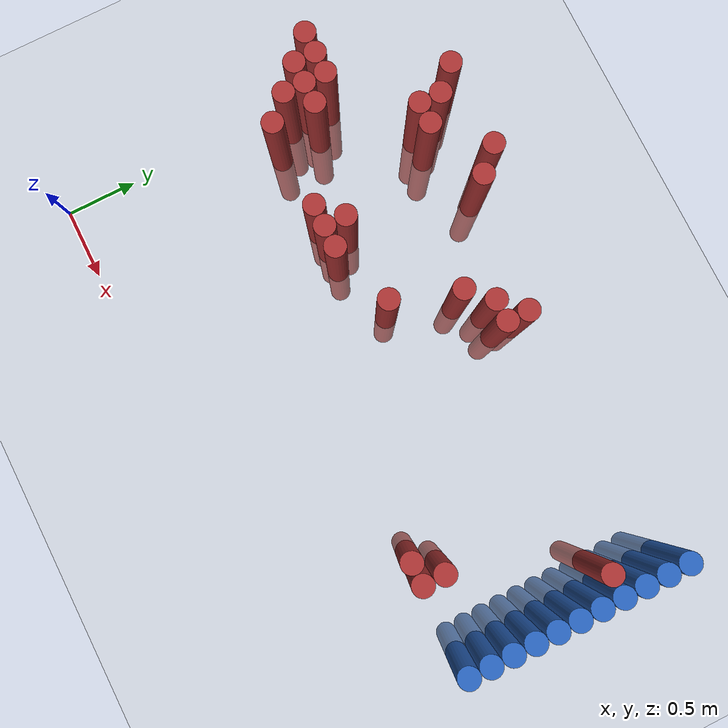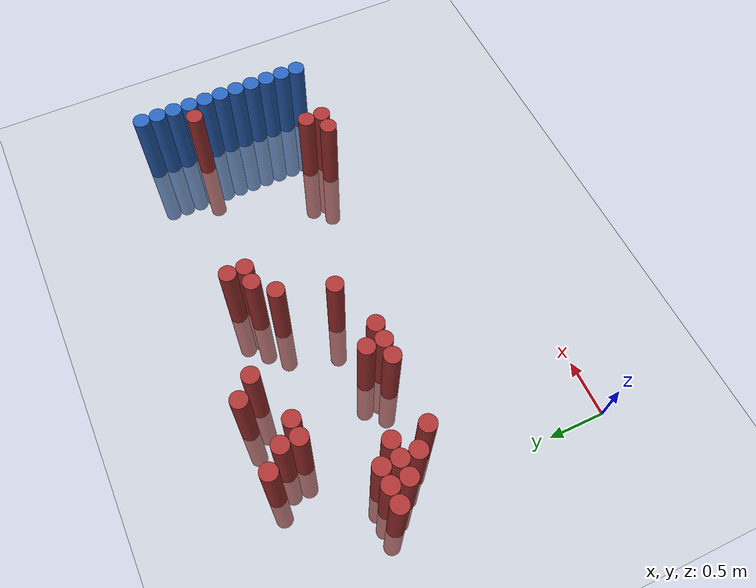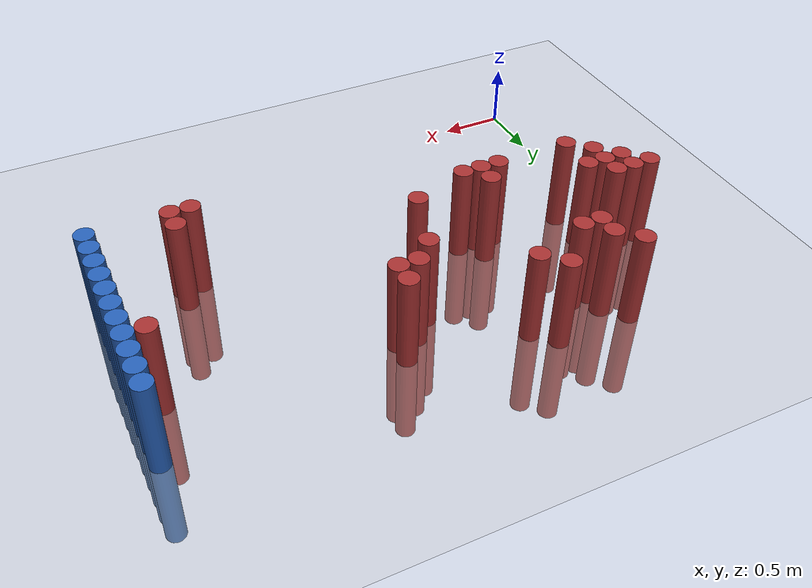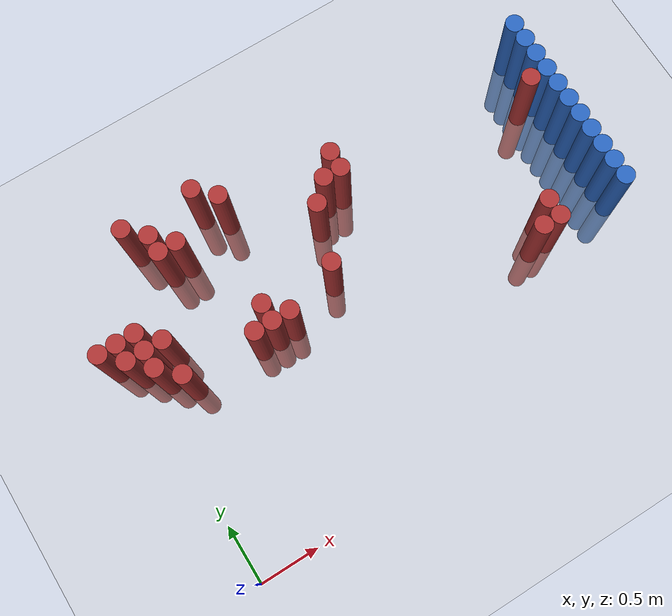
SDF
<sdf version="1.6">
 <world name="default">
  <model name="ground_plane">
   <static>1</static>
   <link name="link">
    <collision name="collision">
     <geometry><plane><normal>0 0 1</normal><size>100 100</size></plane></geometry>
     <surface><friction><ode><mu>100</mu><mu2>50</mu2></ode></friction></surface>
    </collision>
    <visual name="visual">
     <cast_shadows>0</cast_shadows>
     <geometry><plane><normal>0 0 1</normal><size>100 100</size></plane></geometry>
     <material>
      <script><uri>file://media/materials/scripts/gazebo.material</uri><name>Gazebo/Grey</name></script>
     </material>
    </visual>
   </link>
  </model>
  <model name="unit_cylinder_128">
   <static>1</static>
   <pose>3.925000 1.075000 0.000000 0.000000 0.000000 0.000000</pose>
   <link name="link">
    <inertial>
     <mass>1</mass>
     <inertia><ixx>0.145833</ixx><ixy>0</ixy><ixz>0</ixz><iyy>0.145833</iyy><iyz>0</iyz><izz>0.125</izz></inertia>
    </inertial>
    <collision name="collision">
     <geometry><cylinder><radius>0.075000</radius><length>1.5</length></cylinder></geometry>
    </collision>
    <visual name="visual">
     <geometry><cylinder><radius>0.075000</radius><length>1.5</length></cylinder></geometry>
     <material>
      <ambient>0.152000 0.379000 0.720000 1</ambient>
      <diffuse>0.152000 0.379000 0.720000 1</diffuse>
     </material>
     <material>
      <script><name>Gazebo/Grey</name><uri>file://media/materials/scripts/gazebo.material</uri></script>
     </material>
    </visual>
   </link>
  </model>
  <model name="unit_cylinder_130">
   <static>1</static>
   <pose>3.925000 1.225000 0.000000 0.000000 0.000000 0.000000</pose>
   <link name="link">
    <inertial>
     <mass>1</mass>
     <inertia><ixx>0.145833</ixx><ixy>0</ixy><ixz>0</ixz><iyy>0.145833</iyy><iyz>0</iyz><izz>0.125</izz></inertia>
    </inertial>
    <collision name="collision">
     <geometry><cylinder><radius>0.075000</radius><length>1.5</length></cylinder></geometry>
    </collision>
    <visual name="visual">
     <geometry><cylinder><radius>0.075000</radius><length>1.5</length></cylinder></geometry>
     <material>
      <ambient>0.152000 0.379000 0.720000 1</ambient>
      <diffuse>0.152000 0.379000 0.720000 1</diffuse>
     </material>
     <material>
      <script><name>Gazebo/Grey</name><uri>file://media/materials/scripts/gazebo.material</uri></script>
     </material>
    </visual>
   </link>
  </model>
  <model name="unit_cylinder_132">
   <static>1</static>
   <pose>3.925000 1.375000 0.000000 0.000000 0.000000 0.000000</pose>
   <link name="link">
    <inertial>
     <mass>1</mass>
     <inertia><ixx>0.145833</ixx><ixy>0</ixy><ixz>0</ixz><iyy>0.145833</iyy><iyz>0</iyz><izz>0.125</izz></inertia>
    </inertial>
    <collision name="collision">
     <geometry><cylinder><radius>0.075000</radius><length>1.5</length></cylinder></geometry>
    </collision>
    <visual name="visual">
     <geometry><cylinder><radius>0.075000</radius><length>1.5</length></cylinder></geometry>
     <material>
      <ambient>0.152000 0.379000 0.720000 1</ambient>
      <diffuse>0.152000 0.379000 0.720000 1</diffuse>
     </material>
     <material>
      <script><name>Gazebo/Grey</name><uri>file://media/materials/scripts/gazebo.material</uri></script>
     </material>
    </visual>
   </link>
  </model>
  <model name="unit_cylinder_134">
   <static>1</static>
   <pose>3.925000 1.525000 0.000000 0.000000 0.000000 0.000000</pose>
   <link name="link">
    <inertial>
     <mass>1</mass>
     <inertia><ixx>0.145833</ixx><ixy>0</ixy><ixz>0</ixz><iyy>0.145833</iyy><iyz>0</iyz><izz>0.125</izz></inertia>
    </inertial>
    <collision name="collision">
     <geometry><cylinder><radius>0.075000</radius><length>1.5</length></cylinder></geometry>
    </collision>
    <visual name="visual">
     <geometry><cylinder><radius>0.075000</radius><length>1.5</length></cylinder></geometry>
     <material>
      <ambient>0.152000 0.379000 0.720000 1</ambient>
      <diffuse>0.152000 0.379000 0.720000 1</diffuse>
     </material>
     <material>
      <script><name>Gazebo/Grey</name><uri>file://media/materials/scripts/gazebo.material</uri></script>
     </material>
    </visual>
   </link>
  </model>
  <model name="unit_cylinder_136">
   <static>1</static>
   <pose>3.925000 1.675000 0.000000 0.000000 0.000000 0.000000</pose>
   <link name="link">
    <inertial>
     <mass>1</mass>
     <inertia><ixx>0.145833</ixx><ixy>0</ixy><ixz>0</ixz><iyy>0.145833</iyy><iyz>0</iyz><izz>0.125</izz></inertia>
    </inertial>
    <collision name="collision">
     <geometry><cylinder><radius>0.075000</radius><length>1.5</length></cylinder></geometry>
    </collision>
    <visual name="visual">
     <geometry><cylinder><radius>0.075000</radius><length>1.5</length></cylinder></geometry>
     <material>
      <ambient>0.152000 0.379000 0.720000 1</ambient>
      <diffuse>0.152000 0.379000 0.720000 1</diffuse>
     </material>
     <material>
      <script><name>Gazebo/Grey</name><uri>file://media/materials/scripts/gazebo.material</uri></script>
     </material>
    </visual>
   </link>
  </model>
  <model name="unit_cylinder_138">
   <static>1</static>
   <pose>3.925000 1.825000 0.000000 0.000000 0.000000 0.000000</pose>
   <link name="link">
    <inertial>
     <mass>1</mass>
     <inertia><ixx>0.145833</ixx><ixy>0</ixy><ixz>0</ixz><iyy>0.145833</iyy><iyz>0</iyz><izz>0.125</izz></inertia>
    </inertial>
    <collision name="collision">
     <geometry><cylinder><radius>0.075000</radius><length>1.5</length></cylinder></geometry>
    </collision>
    <visual name="visual">
     <geometry><cylinder><radius>0.075000</radius><length>1.5</length></cylinder></geometry>
     <material>
      <ambient>0.152000 0.379000 0.720000 1</ambient>
      <diffuse>0.152000 0.379000 0.720000 1</diffuse>
     </material>
     <material>
      <script><name>Gazebo/Grey</name><uri>file://media/materials/scripts/gazebo.material</uri></script>
     </material>
    </visual>
   </link>
  </model>
  <model name="unit_cylinder_140">
   <static>1</static>
   <pose>3.925000 1.975000 0.000000 0.000000 0.000000 0.000000</pose>
   <link name="link">
    <inertial>
     <mass>1</mass>
     <inertia><ixx>0.145833</ixx><ixy>0</ixy><ixz>0</ixz><iyy>0.145833</iyy><iyz>0</iyz><izz>0.125</izz></inertia>
    </inertial>
    <collision name="collision">
     <geometry><cylinder><radius>0.075000</radius><length>1.5</length></cylinder></geometry>
    </collision>
    <visual name="visual">
     <geometry><cylinder><radius>0.075000</radius><length>1.5</length></cylinder></geometry>
     <material>
      <ambient>0.152000 0.379000 0.720000 1</ambient>
      <diffuse>0.152000 0.379000 0.720000 1</diffuse>
     </material>
     <material>
      <script><name>Gazebo/Grey</name><uri>file://media/materials/scripts/gazebo.material</uri></script>
     </material>
    </visual>
   </link>
  </model>
  <model name="unit_cylinder_142">
   <static>1</static>
   <pose>3.925000 2.125000 0.000000 0.000000 0.000000 0.000000</pose>
   <link name="link">
    <inertial>
     <mass>1</mass>
     <inertia><ixx>0.145833</ixx><ixy>0</ixy><ixz>0</ixz><iyy>0.145833</iyy><iyz>0</iyz><izz>0.125</izz></inertia>
    </inertial>
    <collision name="collision">
     <geometry><cylinder><radius>0.075000</radius><length>1.5</length></cylinder></geometry>
    </collision>
    <visual name="visual">
     <geometry><cylinder><radius>0.075000</radius><length>1.5</length></cylinder></geometry>
     <material>
      <ambient>0.152000 0.379000 0.720000 1</ambient>
      <diffuse>0.152000 0.379000 0.720000 1</diffuse>
     </material>
     <material>
      <script><name>Gazebo/Grey</name><uri>file://media/materials/scripts/gazebo.material</uri></script>
     </material>
    </visual>
   </link>
  </model>
  <model name="unit_cylinder_144">
   <static>1</static>
   <pose>3.925000 2.275000 0.000000 0.000000 0.000000 0.000000</pose>
   <link name="link">
    <inertial>
     <mass>1</mass>
     <inertia><ixx>0.145833</ixx><ixy>0</ixy><ixz>0</ixz><iyy>0.145833</iyy><iyz>0</iyz><izz>0.125</izz></inertia>
    </inertial>
    <collision name="collision">
     <geometry><cylinder><radius>0.075000</radius><length>1.5</length></cylinder></geometry>
    </collision>
    <visual name="visual">
     <geometry><cylinder><radius>0.075000</radius><length>1.5</length></cylinder></geometry>
     <material>
      <ambient>0.152000 0.379000 0.720000 1</ambient>
      <diffuse>0.152000 0.379000 0.720000 1</diffuse>
     </material>
     <material>
      <script><name>Gazebo/Grey</name><uri>file://media/materials/scripts/gazebo.material</uri></script>
     </material>
    </visual>
   </link>
  </model>
  <model name="unit_cylinder_146">
   <static>1</static>
   <pose>3.925000 2.425000 0.000000 0.000000 0.000000 0.000000</pose>
   <link name="link">
    <inertial>
     <mass>1</mass>
     <inertia><ixx>0.145833</ixx><ixy>0</ixy><ixz>0</ixz><iyy>0.145833</iyy><iyz>0</iyz><izz>0.125</izz></inertia>
    </inertial>
    <collision name="collision">
     <geometry><cylinder><radius>0.075000</radius><length>1.5</length></cylinder></geometry>
    </collision>
    <visual name="visual">
     <geometry><cylinder><radius>0.075000</radius><length>1.5</length></cylinder></geometry>
     <material>
      <ambient>0.152000 0.379000 0.720000 1</ambient>
      <diffuse>0.152000 0.379000 0.720000 1</diffuse>
     </material>
     <material>
      <script><name>Gazebo/Grey</name><uri>file://media/materials/scripts/gazebo.material</uri></script>
     </material>
    </visual>
   </link>
  </model>
  <model name="unit_cylinder_148">
   <static>1</static>
   <pose>3.925000 2.575000 0.000000 0.000000 0.000000 0.000000</pose>
   <link name="link">
    <inertial>
     <mass>1</mass>
     <inertia><ixx>0.145833</ixx><ixy>0</ixy><ixz>0</ixz><iyy>0.145833</iyy><iyz>0</iyz><izz>0.125</izz></inertia>
    </inertial>
    <collision name="collision">
     <geometry><cylinder><radius>0.075000</radius><length>1.5</length></cylinder></geometry>
    </collision>
    <visual name="visual">
     <geometry><cylinder><radius>0.075000</radius><length>1.5</length></cylinder></geometry>
     <material>
      <ambient>0.152000 0.379000 0.720000 1</ambient>
      <diffuse>0.152000 0.379000 0.720000 1</diffuse>
     </material>
     <material>
      <script><name>Gazebo/Grey</name><uri>file://media/materials/scripts/gazebo.material</uri></script>
     </material>
    </visual>
   </link>
  </model>
  <model name="unit_cylinder_350">
   <static>1</static>
   <pose>-0.125000 1.975000 0.000000 0.000000 0.000000 0.000000</pose>
   <link name="link">
    <inertial>
     <mass>1</mass>
     <inertia><ixx>0.145833</ixx><ixy>0</ixy><ixz>0</ixz><iyy>0.145833</iyy><iyz>0</iyz><izz>0.125</izz></inertia>
    </inertial>
    <collision name="collision">
     <geometry><cylinder><radius>0.075000</radius><length>1.5</length></cylinder></geometry>
    </collision>
    <visual name="visual">
     <geometry><cylinder><radius>0.075000</radius><length>1.5</length></cylinder></geometry>
     <material>
      <ambient>0.648000 0.192000 0.192000 1</ambient>
      <diffuse>0.648000 0.192000 0.192000 1</diffuse>
     </material>
     <material>
      <script><name>Gazebo/Grey</name><uri>file://media/materials/scripts/gazebo.material</uri></script>
     </material>
    </visual>
   </link>
  </model>
  <model name="unit_cylinder_352">
   <static>1</static>
   <pose>0.025000 1.825000 0.000000 0.000000 0.000000 0.000000</pose>
   <link name="link">
    <inertial>
     <mass>1</mass>
     <inertia><ixx>0.145833</ixx><ixy>0</ixy><ixz>0</ixz><iyy>0.145833</iyy><iyz>0</iyz><izz>0.125</izz></inertia>
    </inertial>
    <collision name="collision">
     <geometry><cylinder><radius>0.075000</radius><length>1.5</length></cylinder></geometry>
    </collision>
    <visual name="visual">
     <geometry><cylinder><radius>0.075000</radius><length>1.5</length></cylinder></geometry>
     <material>
      <ambient>0.648000 0.192000 0.192000 1</ambient>
      <diffuse>0.648000 0.192000 0.192000 1</diffuse>
     </material>
     <material>
      <script><name>Gazebo/Grey</name><uri>file://media/materials/scripts/gazebo.material</uri></script>
     </material>
    </visual>
   </link>
  </model>
  <model name="unit_cylinder_353">
   <static>1</static>
   <pose>0.025000 1.975000 0.000000 0.000000 0.000000 0.000000</pose>
   <link name="link">
    <inertial>
     <mass>1</mass>
     <inertia><ixx>0.145833</ixx><ixy>0</ixy><ixz>0</ixz><iyy>0.145833</iyy><iyz>0</iyz><izz>0.125</izz></inertia>
    </inertial>
    <collision name="collision">
     <geometry><cylinder><radius>0.075000</radius><length>1.5</length></cylinder></geometry>
    </collision>
    <visual name="visual">
     <geometry><cylinder><radius>0.075000</radius><length>1.5</length></cylinder></geometry>
     <material>
      <ambient>0.648000 0.192000 0.192000 1</ambient>
      <diffuse>0.648000 0.192000 0.192000 1</diffuse>
     </material>
     <material>
      <script><name>Gazebo/Grey</name><uri>file://media/materials/scripts/gazebo.material</uri></script>
     </material>
    </visual>
   </link>
  </model>
  <model name="unit_cylinder_357">
   <static>1</static>
   <pose>0.175000 1.675000 0.000000 0.000000 0.000000 0.000000</pose>
   <link name="link">
    <inertial>
     <mass>1</mass>
     <inertia><ixx>0.145833</ixx><ixy>0</ixy><ixz>0</ixz><iyy>0.145833</iyy><iyz>0</iyz><izz>0.125</izz></inertia>
    </inertial>
    <collision name="collision">
     <geometry><cylinder><radius>0.075000</radius><length>1.5</length></cylinder></geometry>
    </collision>
    <visual name="visual">
     <geometry><cylinder><radius>0.075000</radius><length>1.5</length></cylinder></geometry>
     <material>
      <ambient>0.648000 0.192000 0.192000 1</ambient>
      <diffuse>0.648000 0.192000 0.192000 1</diffuse>
     </material>
     <material>
      <script><name>Gazebo/Grey</name><uri>file://media/materials/scripts/gazebo.material</uri></script>
     </material>
    </visual>
   </link>
  </model>
  <model name="unit_cylinder_358">
   <static>1</static>
   <pose>0.175000 1.825000 0.000000 0.000000 0.000000 0.000000</pose>
   <link name="link">
    <inertial>
     <mass>1</mass>
     <inertia><ixx>0.145833</ixx><ixy>0</ixy><ixz>0</ixz><iyy>0.145833</iyy><iyz>0</iyz><izz>0.125</izz></inertia>
    </inertial>
    <collision name="collision">
     <geometry><cylinder><radius>0.075000</radius><length>1.5</length></cylinder></geometry>
    </collision>
    <visual name="visual">
     <geometry><cylinder><radius>0.075000</radius><length>1.5</length></cylinder></geometry>
     <material>
      <ambient>0.648000 0.192000 0.192000 1</ambient>
      <diffuse>0.648000 0.192000 0.192000 1</diffuse>
     </material>
     <material>
      <script><name>Gazebo/Grey</name><uri>file://media/materials/scripts/gazebo.material</uri></script>
     </material>
    </visual>
   </link>
  </model>
  <model name="unit_cylinder_359">
   <static>1</static>
   <pose>0.175000 1.975000 0.000000 0.000000 0.000000 0.000000</pose>
   <link name="link">
    <inertial>
     <mass>1</mass>
     <inertia><ixx>0.145833</ixx><ixy>0</ixy><ixz>0</ixz><iyy>0.145833</iyy><iyz>0</iyz><izz>0.125</izz></inertia>
    </inertial>
    <collision name="collision">
     <geometry><cylinder><radius>0.075000</radius><length>1.5</length></cylinder></geometry>
    </collision>
    <visual name="visual">
     <geometry><cylinder><radius>0.075000</radius><length>1.5</length></cylinder></geometry>
     <material>
      <ambient>0.648000 0.192000 0.192000 1</ambient>
      <diffuse>0.648000 0.192000 0.192000 1</diffuse>
     </material>
     <material>
      <script><name>Gazebo/Grey</name><uri>file://media/materials/scripts/gazebo.material</uri></script>
     </material>
    </visual>
   </link>
  </model>
  <model name="unit_cylinder_365">
   <static>1</static>
   <pose>0.325000 1.525000 0.000000 0.000000 0.000000 0.000000</pose>
   <link name="link">
    <inertial>
     <mass>1</mass>
     <inertia><ixx>0.145833</ixx><ixy>0</ixy><ixz>0</ixz><iyy>0.145833</iyy><iyz>0</iyz><izz>0.125</izz></inertia>
    </inertial>
    <collision name="collision">
     <geometry><cylinder><radius>0.075000</radius><length>1.5</length></cylinder></geometry>
    </collision>
    <visual name="visual">
     <geometry><cylinder><radius>0.075000</radius><length>1.5</length></cylinder></geometry>
     <material>
      <ambient>0.648000 0.192000 0.192000 1</ambient>
      <diffuse>0.648000 0.192000 0.192000 1</diffuse>
     </material>
     <material>
      <script><name>Gazebo/Grey</name><uri>file://media/materials/scripts/gazebo.material</uri></script>
     </material>
    </visual>
   </link>
  </model>
  <model name="unit_cylinder_366">
   <static>1</static>
   <pose>0.325000 1.825000 0.000000 0.000000 0.000000 0.000000</pose>
   <link name="link">
    <inertial>
     <mass>1</mass>
     <inertia><ixx>0.145833</ixx><ixy>0</ixy><ixz>0</ixz><iyy>0.145833</iyy><iyz>0</iyz><izz>0.125</izz></inertia>
    </inertial>
    <collision name="collision">
     <geometry><cylinder><radius>0.075000</radius><length>1.5</length></cylinder></geometry>
    </collision>
    <visual name="visual">
     <geometry><cylinder><radius>0.075000</radius><length>1.5</length></cylinder></geometry>
     <material>
      <ambient>0.648000 0.192000 0.192000 1</ambient>
      <diffuse>0.648000 0.192000 0.192000 1</diffuse>
     </material>
     <material>
      <script><name>Gazebo/Grey</name><uri>file://media/materials/scripts/gazebo.material</uri></script>
     </material>
    </visual>
   </link>
  </model>
  <model name="unit_cylinder_372">
   <static>1</static>
   <pose>0.475000 2.725000 0.000000 0.000000 0.000000 0.000000</pose>
   <link name="link">
    <inertial>
     <mass>1</mass>
     <inertia><ixx>0.145833</ixx><ixy>0</ixy><ixz>0</ixz><iyy>0.145833</iyy><iyz>0</iyz><izz>0.125</izz></inertia>
    </inertial>
    <collision name="collision">
     <geometry><cylinder><radius>0.075000</radius><length>1.5</length></cylinder></geometry>
    </collision>
    <visual name="visual">
     <geometry><cylinder><radius>0.075000</radius><length>1.5</length></cylinder></geometry>
     <material>
      <ambient>0.648000 0.192000 0.192000 1</ambient>
      <diffuse>0.648000 0.192000 0.192000 1</diffuse>
     </material>
     <material>
      <script><name>Gazebo/Grey</name><uri>file://media/materials/scripts/gazebo.material</uri></script>
     </material>
    </visual>
   </link>
  </model>
  <model name="unit_cylinder_377">
   <static>1</static>
   <pose>0.625000 2.425000 0.000000 0.000000 0.000000 0.000000</pose>
   <link name="link">
    <inertial>
     <mass>1</mass>
     <inertia><ixx>0.145833</ixx><ixy>0</ixy><ixz>0</ixz><iyy>0.145833</iyy><iyz>0</iyz><izz>0.125</izz></inertia>
    </inertial>
    <collision name="collision">
     <geometry><cylinder><radius>0.075000</radius><length>1.5</length></cylinder></geometry>
    </collision>
    <visual name="visual">
     <geometry><cylinder><radius>0.075000</radius><length>1.5</length></cylinder></geometry>
     <material>
      <ambient>0.648000 0.192000 0.192000 1</ambient>
      <diffuse>0.648000 0.192000 0.192000 1</diffuse>
     </material>
     <material>
      <script><name>Gazebo/Grey</name><uri>file://media/materials/scripts/gazebo.material</uri></script>
     </material>
    </visual>
   </link>
  </model>
  <model name="unit_cylinder_378">
   <static>1</static>
   <pose>0.625000 2.575000 0.000000 0.000000 0.000000 0.000000</pose>
   <link name="link">
    <inertial>
     <mass>1</mass>
     <inertia><ixx>0.145833</ixx><ixy>0</ixy><ixz>0</ixz><iyy>0.145833</iyy><iyz>0</iyz><izz>0.125</izz></inertia>
    </inertial>
    <collision name="collision">
     <geometry><cylinder><radius>0.075000</radius><length>1.5</length></cylinder></geometry>
    </collision>
    <visual name="visual">
     <geometry><cylinder><radius>0.075000</radius><length>1.5</length></cylinder></geometry>
     <material>
      <ambient>0.648000 0.192000 0.192000 1</ambient>
      <diffuse>0.648000 0.192000 0.192000 1</diffuse>
     </material>
     <material>
      <script><name>Gazebo/Grey</name><uri>file://media/materials/scripts/gazebo.material</uri></script>
     </material>
    </visual>
   </link>
  </model>
  <model name="unit_cylinder_384">
   <static>1</static>
   <pose>0.775000 2.425000 0.000000 0.000000 0.000000 0.000000</pose>
   <link name="link">
    <inertial>
     <mass>1</mass>
     <inertia><ixx>0.145833</ixx><ixy>0</ixy><ixz>0</ixz><iyy>0.145833</iyy><iyz>0</iyz><izz>0.125</izz></inertia>
    </inertial>
    <collision name="collision">
     <geometry><cylinder><radius>0.075000</radius><length>1.5</length></cylinder></geometry>
    </collision>
    <visual name="visual">
     <geometry><cylinder><radius>0.075000</radius><length>1.5</length></cylinder></geometry>
     <material>
      <ambient>0.648000 0.192000 0.192000 1</ambient>
      <diffuse>0.648000 0.192000 0.192000 1</diffuse>
     </material>
     <material>
      <script><name>Gazebo/Grey</name><uri>file://media/materials/scripts/gazebo.material</uri></script>
     </material>
    </visual>
   </link>
  </model>
  <model name="unit_cylinder_390">
   <static>1</static>
   <pose>0.925000 1.525000 0.000000 0.000000 0.000000 0.000000</pose>
   <link name="link">
    <inertial>
     <mass>1</mass>
     <inertia><ixx>0.145833</ixx><ixy>0</ixy><ixz>0</ixz><iyy>0.145833</iyy><iyz>0</iyz><izz>0.125</izz></inertia>
    </inertial>
    <collision name="collision">
     <geometry><cylinder><radius>0.075000</radius><length>1.5</length></cylinder></geometry>
    </collision>
    <visual name="visual">
     <geometry><cylinder><radius>0.075000</radius><length>1.5</length></cylinder></geometry>
     <material>
      <ambient>0.648000 0.192000 0.192000 1</ambient>
      <diffuse>0.648000 0.192000 0.192000 1</diffuse>
     </material>
     <material>
      <script><name>Gazebo/Grey</name><uri>file://media/materials/scripts/gazebo.material</uri></script>
     </material>
    </visual>
   </link>
  </model>
  <model name="unit_cylinder_393">
   <static>1</static>
   <pose>1.075000 1.525000 0.000000 0.000000 0.000000 0.000000</pose>
   <link name="link">
    <inertial>
     <mass>1</mass>
     <inertia><ixx>0.145833</ixx><ixy>0</ixy><ixz>0</ixz><iyy>0.145833</iyy><iyz>0</iyz><izz>0.125</izz></inertia>
    </inertial>
    <collision name="collision">
     <geometry><cylinder><radius>0.075000</radius><length>1.5</length></cylinder></geometry>
    </collision>
    <visual name="visual">
     <geometry><cylinder><radius>0.075000</radius><length>1.5</length></cylinder></geometry>
     <material>
      <ambient>0.648000 0.192000 0.192000 1</ambient>
      <diffuse>0.648000 0.192000 0.192000 1</diffuse>
     </material>
     <material>
      <script><name>Gazebo/Grey</name><uri>file://media/materials/scripts/gazebo.material</uri></script>
     </material>
    </visual>
   </link>
  </model>
  <model name="unit_cylinder_394">
   <static>1</static>
   <pose>1.075000 1.675000 0.000000 0.000000 0.000000 0.000000</pose>
   <link name="link">
    <inertial>
     <mass>1</mass>
     <inertia><ixx>0.145833</ixx><ixy>0</ixy><ixz>0</ixz><iyy>0.145833</iyy><iyz>0</iyz><izz>0.125</izz></inertia>
    </inertial>
    <collision name="collision">
     <geometry><cylinder><radius>0.075000</radius><length>1.5</length></cylinder></geometry>
    </collision>
    <visual name="visual">
     <geometry><cylinder><radius>0.075000</radius><length>1.5</length></cylinder></geometry>
     <material>
      <ambient>0.648000 0.192000 0.192000 1</ambient>
      <diffuse>0.648000 0.192000 0.192000 1</diffuse>
     </material>
     <material>
      <script><name>Gazebo/Grey</name><uri>file://media/materials/scripts/gazebo.material</uri></script>
     </material>
    </visual>
   </link>
  </model>
  <model name="unit_cylinder_395">
   <static>1</static>
   <pose>1.075000 2.725000 0.000000 0.000000 0.000000 0.000000</pose>
   <link name="link">
    <inertial>
     <mass>1</mass>
     <inertia><ixx>0.145833</ixx><ixy>0</ixy><ixz>0</ixz><iyy>0.145833</iyy><iyz>0</iyz><izz>0.125</izz></inertia>
    </inertial>
    <collision name="collision">
     <geometry><cylinder><radius>0.075000</radius><length>1.5</length></cylinder></geometry>
    </collision>
    <visual name="visual">
     <geometry><cylinder><radius>0.075000</radius><length>1.5</length></cylinder></geometry>
     <material>
      <ambient>0.648000 0.192000 0.192000 1</ambient>
      <diffuse>0.648000 0.192000 0.192000 1</diffuse>
     </material>
     <material>
      <script><name>Gazebo/Grey</name><uri>file://media/materials/scripts/gazebo.material</uri></script>
     </material>
    </visual>
   </link>
  </model>
  <model name="unit_cylinder_397">
   <static>1</static>
   <pose>1.225000 1.525000 0.000000 0.000000 0.000000 0.000000</pose>
   <link name="link">
    <inertial>
     <mass>1</mass>
     <inertia><ixx>0.145833</ixx><ixy>0</ixy><ixz>0</ixz><iyy>0.145833</iyy><iyz>0</iyz><izz>0.125</izz></inertia>
    </inertial>
    <collision name="collision">
     <geometry><cylinder><radius>0.075000</radius><length>1.5</length></cylinder></geometry>
    </collision>
    <visual name="visual">
     <geometry><cylinder><radius>0.075000</radius><length>1.5</length></cylinder></geometry>
     <material>
      <ambient>0.648000 0.192000 0.192000 1</ambient>
      <diffuse>0.648000 0.192000 0.192000 1</diffuse>
     </material>
     <material>
      <script><name>Gazebo/Grey</name><uri>file://media/materials/scripts/gazebo.material</uri></script>
     </material>
    </visual>
   </link>
  </model>
  <model name="unit_cylinder_398">
   <static>1</static>
   <pose>1.225000 2.575000 0.000000 0.000000 0.000000 0.000000</pose>
   <link name="link">
    <inertial>
     <mass>1</mass>
     <inertia><ixx>0.145833</ixx><ixy>0</ixy><ixz>0</ixz><iyy>0.145833</iyy><iyz>0</iyz><izz>0.125</izz></inertia>
    </inertial>
    <collision name="collision">
     <geometry><cylinder><radius>0.075000</radius><length>1.5</length></cylinder></geometry>
    </collision>
    <visual name="visual">
     <geometry><cylinder><radius>0.075000</radius><length>1.5</length></cylinder></geometry>
     <material>
      <ambient>0.648000 0.192000 0.192000 1</ambient>
      <diffuse>0.648000 0.192000 0.192000 1</diffuse>
     </material>
     <material>
      <script><name>Gazebo/Grey</name><uri>file://media/materials/scripts/gazebo.material</uri></script>
     </material>
    </visual>
   </link>
  </model>
  <model name="unit_cylinder_406">
   <static>1</static>
   <pose>1.675000 1.675000 0.000000 0.000000 0.000000 0.000000</pose>
   <link name="link">
    <inertial>
     <mass>1</mass>
     <inertia><ixx>0.145833</ixx><ixy>0</ixy><ixz>0</ixz><iyy>0.145833</iyy><iyz>0</iyz><izz>0.125</izz></inertia>
    </inertial>
    <collision name="collision">
     <geometry><cylinder><radius>0.075000</radius><length>1.5</length></cylinder></geometry>
    </collision>
    <visual name="visual">
     <geometry><cylinder><radius>0.075000</radius><length>1.5</length></cylinder></geometry>
     <material>
      <ambient>0.648000 0.192000 0.192000 1</ambient>
      <diffuse>0.648000 0.192000 0.192000 1</diffuse>
     </material>
     <material>
      <script><name>Gazebo/Grey</name><uri>file://media/materials/scripts/gazebo.material</uri></script>
     </material>
    </visual>
   </link>
  </model>
  <model name="unit_cylinder_407">
   <static>1</static>
   <pose>1.825000 2.125000 0.000000 0.000000 0.000000 0.000000</pose>
   <link name="link">
    <inertial>
     <mass>1</mass>
     <inertia><ixx>0.145833</ixx><ixy>0</ixy><ixz>0</ixz><iyy>0.145833</iyy><iyz>0</iyz><izz>0.125</izz></inertia>
    </inertial>
    <collision name="collision">
     <geometry><cylinder><radius>0.075000</radius><length>1.5</length></cylinder></geometry>
    </collision>
    <visual name="visual">
     <geometry><cylinder><radius>0.075000</radius><length>1.5</length></cylinder></geometry>
     <material>
      <ambient>0.648000 0.192000 0.192000 1</ambient>
      <diffuse>0.648000 0.192000 0.192000 1</diffuse>
     </material>
     <material>
      <script><name>Gazebo/Grey</name><uri>file://media/materials/scripts/gazebo.material</uri></script>
     </material>
    </visual>
   </link>
  </model>
  <model name="unit_cylinder_408">
   <static>1</static>
   <pose>1.975000 2.275000 0.000000 0.000000 0.000000 0.000000</pose>
   <link name="link">
    <inertial>
     <mass>1</mass>
     <inertia><ixx>0.145833</ixx><ixy>0</ixy><ixz>0</ixz><iyy>0.145833</iyy><iyz>0</iyz><izz>0.125</izz></inertia>
    </inertial>
    <collision name="collision">
     <geometry><cylinder><radius>0.075000</radius><length>1.5</length></cylinder></geometry>
    </collision>
    <visual name="visual">
     <geometry><cylinder><radius>0.075000</radius><length>1.5</length></cylinder></geometry>
     <material>
      <ambient>0.648000 0.192000 0.192000 1</ambient>
      <diffuse>0.648000 0.192000 0.192000 1</diffuse>
     </material>
     <material>
      <script><name>Gazebo/Grey</name><uri>file://media/materials/scripts/gazebo.material</uri></script>
     </material>
    </visual>
   </link>
  </model>
  <model name="unit_cylinder_410">
   <static>1</static>
   <pose>2.125000 2.275000 0.000000 0.000000 0.000000 0.000000</pose>
   <link name="link">
    <inertial>
     <mass>1</mass>
     <inertia><ixx>0.145833</ixx><ixy>0</ixy><ixz>0</ixz><iyy>0.145833</iyy><iyz>0</iyz><izz>0.125</izz></inertia>
    </inertial>
    <collision name="collision">
     <geometry><cylinder><radius>0.075000</radius><length>1.5</length></cylinder></geometry>
    </collision>
    <visual name="visual">
     <geometry><cylinder><radius>0.075000</radius><length>1.5</length></cylinder></geometry>
     <material>
      <ambient>0.648000 0.192000 0.192000 1</ambient>
      <diffuse>0.648000 0.192000 0.192000 1</diffuse>
     </material>
     <material>
      <script><name>Gazebo/Grey</name><uri>file://media/materials/scripts/gazebo.material</uri></script>
     </material>
    </visual>
   </link>
  </model>
  <model name="unit_cylinder_411">
   <static>1</static>
   <pose>2.125000 2.425000 0.000000 0.000000 0.000000 0.000000</pose>
   <link name="link">
    <inertial>
     <mass>1</mass>
     <inertia><ixx>0.145833</ixx><ixy>0</ixy><ixz>0</ixz><iyy>0.145833</iyy><iyz>0</iyz><izz>0.125</izz></inertia>
    </inertial>
    <collision name="collision">
     <geometry><cylinder><radius>0.075000</radius><length>1.5</length></cylinder></geometry>
    </collision>
    <visual name="visual">
     <geometry><cylinder><radius>0.075000</radius><length>1.5</length></cylinder></geometry>
     <material>
      <ambient>0.648000 0.192000 0.192000 1</ambient>
      <diffuse>0.648000 0.192000 0.192000 1</diffuse>
     </material>
     <material>
      <script><name>Gazebo/Grey</name><uri>file://media/materials/scripts/gazebo.material</uri></script>
     </material>
    </visual>
   </link>
  </model>
  <model name="unit_cylinder_426">
   <static>1</static>
   <pose>3.175000 1.075000 0.000000 0.000000 0.000000 0.000000</pose>
   <link name="link">
    <inertial>
     <mass>1</mass>
     <inertia><ixx>0.145833</ixx><ixy>0</ixy><ixz>0</ixz><iyy>0.145833</iyy><iyz>0</iyz><izz>0.125</izz></inertia>
    </inertial>
    <collision name="collision">
     <geometry><cylinder><radius>0.075000</radius><length>1.5</length></cylinder></geometry>
    </collision>
    <visual name="visual">
     <geometry><cylinder><radius>0.075000</radius><length>1.5</length></cylinder></geometry>
     <material>
      <ambient>0.648000 0.192000 0.192000 1</ambient>
      <diffuse>0.648000 0.192000 0.192000 1</diffuse>
     </material>
     <material>
      <script><name>Gazebo/Grey</name><uri>file://media/materials/scripts/gazebo.material</uri></script>
     </material>
    </visual>
   </link>
  </model>
  <model name="unit_cylinder_430">
   <static>1</static>
   <pose>3.325000 1.075000 0.000000 0.000000 0.000000 0.000000</pose>
   <link name="link">
    <inertial>
     <mass>1</mass>
     <inertia><ixx>0.145833</ixx><ixy>0</ixy><ixz>0</ixz><iyy>0.145833</iyy><iyz>0</iyz><izz>0.125</izz></inertia>
    </inertial>
    <collision name="collision">
     <geometry><cylinder><radius>0.075000</radius><length>1.5</length></cylinder></geometry>
    </collision>
    <visual name="visual">
     <geometry><cylinder><radius>0.075000</radius><length>1.5</length></cylinder></geometry>
     <material>
      <ambient>0.648000 0.192000 0.192000 1</ambient>
      <diffuse>0.648000 0.192000 0.192000 1</diffuse>
     </material>
     <material>
      <script><name>Gazebo/Grey</name><uri>file://media/materials/scripts/gazebo.material</uri></script>
     </material>
    </visual>
   </link>
  </model>
  <model name="unit_cylinder_431">
   <static>1</static>
   <pose>3.325000 1.225000 0.000000 0.000000 0.000000 0.000000</pose>
   <link name="link">
    <inertial>
     <mass>1</mass>
     <inertia><ixx>0.145833</ixx><ixy>0</ixy><ixz>0</ixz><iyy>0.145833</iyy><iyz>0</iyz><izz>0.125</izz></inertia>
    </inertial>
    <collision name="collision">
     <geometry><cylinder><radius>0.075000</radius><length>1.5</length></cylinder></geometry>
    </collision>
    <visual name="visual">
     <geometry><cylinder><radius>0.075000</radius><length>1.5</length></cylinder></geometry>
     <material>
      <ambient>0.648000 0.192000 0.192000 1</ambient>
      <diffuse>0.648000 0.192000 0.192000 1</diffuse>
     </material>
     <material>
      <script><name>Gazebo/Grey</name><uri>file://media/materials/scripts/gazebo.material</uri></script>
     </material>
    </visual>
   </link>
  </model>
  <model name="unit_cylinder_438">
   <static>1</static>
   <pose>3.775000 2.125000 0.000000 0.000000 0.000000 0.000000</pose>
   <link name="link">
    <inertial>
     <mass>1</mass>
     <inertia><ixx>0.145833</ixx><ixy>0</ixy><ixz>0</ixz><iyy>0.145833</iyy><iyz>0</iyz><izz>0.125</izz></inertia>
    </inertial>
    <collision name="collision">
     <geometry><cylinder><radius>0.075000</radius><length>1.5</length></cylinder></geometry>
    </collision>
    <visual name="visual">
     <geometry><cylinder><radius>0.075000</radius><length>1.5</length></cylinder></geometry>
     <material>
      <ambient>0.648000 0.192000 0.192000 1</ambient>
      <diffuse>0.648000 0.192000 0.192000 1</diffuse>
     </material>
     <material>
      <script><name>Gazebo/Grey</name><uri>file://media/materials/scripts/gazebo.material</uri></script>
     </material>
    </visual>
   </link>
  </model>
  <model name="unit_cylinder_464">
   <static>1</static>
   <pose>3.925000 1.075000 0.000000 0.000000 0.000000 0.000000</pose>
   <link name="link">
    <inertial>
     <mass>1</mass>
     <inertia><ixx>0.145833</ixx><ixy>0</ixy><ixz>0</ixz><iyy>0.145833</iyy><iyz>0</iyz><izz>0.125</izz></inertia>
    </inertial>
    <collision name="collision">
     <geometry><cylinder><radius>0.075000</radius><length>1.5</length></cylinder></geometry>
    </collision>
    <visual name="visual">
     <geometry><cylinder><radius>0.075000</radius><length>1.5</length></cylinder></geometry>
     <material>
      <ambient>0.152000 0.379000 0.720000 1</ambient>
      <diffuse>0.152000 0.379000 0.720000 1</diffuse>
     </material>
     <material>
      <script><name>Gazebo/Grey</name><uri>file://media/materials/scripts/gazebo.material</uri></script>
     </material>
    </visual>
   </link>
  </model>
  <model name="unit_cylinder_465">
   <static>1</static>
   <pose>3.925000 1.225000 0.000000 0.000000 0.000000 0.000000</pose>
   <link name="link">
    <inertial>
     <mass>1</mass>
     <inertia><ixx>0.145833</ixx><ixy>0</ixy><ixz>0</ixz><iyy>0.145833</iyy><iyz>0</iyz><izz>0.125</izz></inertia>
    </inertial>
    <collision name="collision">
     <geometry><cylinder><radius>0.075000</radius><length>1.5</length></cylinder></geometry>
    </collision>
    <visual name="visual">
     <geometry><cylinder><radius>0.075000</radius><length>1.5</length></cylinder></geometry>
     <material>
      <ambient>0.152000 0.379000 0.720000 1</ambient>
      <diffuse>0.152000 0.379000 0.720000 1</diffuse>
     </material>
     <material>
      <script><name>Gazebo/Grey</name><uri>file://media/materials/scripts/gazebo.material</uri></script>
     </material>
    </visual>
   </link>
  </model>
  <model name="unit_cylinder_466">
   <static>1</static>
   <pose>3.925000 1.375000 0.000000 0.000000 0.000000 0.000000</pose>
   <link name="link">
    <inertial>
     <mass>1</mass>
     <inertia><ixx>0.145833</ixx><ixy>0</ixy><ixz>0</ixz><iyy>0.145833</iyy><iyz>0</iyz><izz>0.125</izz></inertia>
    </inertial>
    <collision name="collision">
     <geometry><cylinder><radius>0.075000</radius><length>1.5</length></cylinder></geometry>
    </collision>
    <visual name="visual">
     <geometry><cylinder><radius>0.075000</radius><length>1.5</length></cylinder></geometry>
     <material>
      <ambient>0.152000 0.379000 0.720000 1</ambient>
      <diffuse>0.152000 0.379000 0.720000 1</diffuse>
     </material>
     <material>
      <script><name>Gazebo/Grey</name><uri>file://media/materials/scripts/gazebo.material</uri></script>
     </material>
    </visual>
   </link>
  </model>
  <model name="unit_cylinder_467">
   <static>1</static>
   <pose>3.925000 1.525000 0.000000 0.000000 0.000000 0.000000</pose>
   <link name="link">
    <inertial>
     <mass>1</mass>
     <inertia><ixx>0.145833</ixx><ixy>0</ixy><ixz>0</ixz><iyy>0.145833</iyy><iyz>0</iyz><izz>0.125</izz></inertia>
    </inertial>
    <collision name="collision">
     <geometry><cylinder><radius>0.075000</radius><length>1.5</length></cylinder></geometry>
    </collision>
    <visual name="visual">
     <geometry><cylinder><radius>0.075000</radius><length>1.5</length></cylinder></geometry>
     <material>
      <ambient>0.152000 0.379000 0.720000 1</ambient>
      <diffuse>0.152000 0.379000 0.720000 1</diffuse>
     </material>
     <material>
      <script><name>Gazebo/Grey</name><uri>file://media/materials/scripts/gazebo.material</uri></script>
     </material>
    </visual>
   </link>
  </model>
  <model name="unit_cylinder_468">
   <static>1</static>
   <pose>3.925000 1.675000 0.000000 0.000000 0.000000 0.000000</pose>
   <link name="link">
    <inertial>
     <mass>1</mass>
     <inertia><ixx>0.145833</ixx><ixy>0</ixy><ixz>0</ixz><iyy>0.145833</iyy><iyz>0</iyz><izz>0.125</izz></inertia>
    </inertial>
    <collision name="collision">
     <geometry><cylinder><radius>0.075000</radius><length>1.5</length></cylinder></geometry>
    </collision>
    <visual name="visual">
     <geometry><cylinder><radius>0.075000</radius><length>1.5</length></cylinder></geometry>
     <material>
      <ambient>0.152000 0.379000 0.720000 1</ambient>
      <diffuse>0.152000 0.379000 0.720000 1</diffuse>
     </material>
     <material>
      <script><name>Gazebo/Grey</name><uri>file://media/materials/scripts/gazebo.material</uri></script>
     </material>
    </visual>
   </link>
  </model>
  <model name="unit_cylinder_469">
   <static>1</static>
   <pose>3.925000 1.825000 0.000000 0.000000 0.000000 0.000000</pose>
   <link name="link">
    <inertial>
     <mass>1</mass>
     <inertia><ixx>0.145833</ixx><ixy>0</ixy><ixz>0</ixz><iyy>0.145833</iyy><iyz>0</iyz><izz>0.125</izz></inertia>
    </inertial>
    <collision name="collision">
     <geometry><cylinder><radius>0.075000</radius><length>1.5</length></cylinder></geometry>
    </collision>
    <visual name="visual">
     <geometry><cylinder><radius>0.075000</radius><length>1.5</length></cylinder></geometry>
     <material>
      <ambient>0.152000 0.379000 0.720000 1</ambient>
      <diffuse>0.152000 0.379000 0.720000 1</diffuse>
     </material>
     <material>
      <script><name>Gazebo/Grey</name><uri>file://media/materials/scripts/gazebo.material</uri></script>
     </material>
    </visual>
   </link>
  </model>
  <model name="unit_cylinder_470">
   <static>1</static>
   <pose>3.925000 1.975000 0.000000 0.000000 0.000000 0.000000</pose>
   <link name="link">
    <inertial>
     <mass>1</mass>
     <inertia><ixx>0.145833</ixx><ixy>0</ixy><ixz>0</ixz><iyy>0.145833</iyy><iyz>0</iyz><izz>0.125</izz></inertia>
    </inertial>
    <collision name="collision">
     <geometry><cylinder><radius>0.075000</radius><length>1.5</length></cylinder></geometry>
    </collision>
    <visual name="visual">
     <geometry><cylinder><radius>0.075000</radius><length>1.5</length></cylinder></geometry>
     <material>
      <ambient>0.152000 0.379000 0.720000 1</ambient>
      <diffuse>0.152000 0.379000 0.720000 1</diffuse>
     </material>
     <material>
      <script><name>Gazebo/Grey</name><uri>file://media/materials/scripts/gazebo.material</uri></script>
     </material>
    </visual>
   </link>
  </model>
  <model name="unit_cylinder_471">
   <static>1</static>
   <pose>3.925000 2.125000 0.000000 0.000000 0.000000 0.000000</pose>
   <link name="link">
    <inertial>
     <mass>1</mass>
     <inertia><ixx>0.145833</ixx><ixy>0</ixy><ixz>0</ixz><iyy>0.145833</iyy><iyz>0</iyz><izz>0.125</izz></inertia>
    </inertial>
    <collision name="collision">
     <geometry><cylinder><radius>0.075000</radius><length>1.5</length></cylinder></geometry>
    </collision>
    <visual name="visual">
     <geometry><cylinder><radius>0.075000</radius><length>1.5</length></cylinder></geometry>
     <material>
      <ambient>0.152000 0.379000 0.720000 1</ambient>
      <diffuse>0.152000 0.379000 0.720000 1</diffuse>
     </material>
     <material>
      <script><name>Gazebo/Grey</name><uri>file://media/materials/scripts/gazebo.material</uri></script>
     </material>
    </visual>
   </link>
  </model>
  <model name="unit_cylinder_472">
   <static>1</static>
   <pose>3.925000 2.275000 0.000000 0.000000 0.000000 0.000000</pose>
   <link name="link">
    <inertial>
     <mass>1</mass>
     <inertia><ixx>0.145833</ixx><ixy>0</ixy><ixz>0</ixz><iyy>0.145833</iyy><iyz>0</iyz><izz>0.125</izz></inertia>
    </inertial>
    <collision name="collision">
     <geometry><cylinder><radius>0.075000</radius><length>1.5</length></cylinder></geometry>
    </collision>
    <visual name="visual">
     <geometry><cylinder><radius>0.075000</radius><length>1.5</length></cylinder></geometry>
     <material>
      <ambient>0.152000 0.379000 0.720000 1</ambient>
      <diffuse>0.152000 0.379000 0.720000 1</diffuse>
     </material>
     <material>
      <script><name>Gazebo/Grey</name><uri>file://media/materials/scripts/gazebo.material</uri></script>
     </material>
    </visual>
   </link>
  </model>
  <model name="unit_cylinder_473">
   <static>1</static>
   <pose>3.925000 2.425000 0.000000 0.000000 0.000000 0.000000</pose>
   <link name="link">
    <inertial>
     <mass>1</mass>
     <inertia><ixx>0.145833</ixx><ixy>0</ixy><ixz>0</ixz><iyy>0.145833</iyy><iyz>0</iyz><izz>0.125</izz></inertia>
    </inertial>
    <collision name="collision">
     <geometry><cylinder><radius>0.075000</radius><length>1.5</length></cylinder></geometry>
    </collision>
    <visual name="visual">
     <geometry><cylinder><radius>0.075000</radius><length>1.5</length></cylinder></geometry>
     <material>
      <ambient>0.152000 0.379000 0.720000 1</ambient>
      <diffuse>0.152000 0.379000 0.720000 1</diffuse>
     </material>
     <material>
      <script><name>Gazebo/Grey</name><uri>file://media/materials/scripts/gazebo.material</uri></script>
     </material>
    </visual>
   </link>
  </model>
  <model name="unit_cylinder_474">
   <static>1</static>
   <pose>3.925000 2.575000 0.000000 0.000000 0.000000 0.000000</pose>
   <link name="link">
    <inertial>
     <mass>1</mass>
     <inertia><ixx>0.145833</ixx><ixy>0</ixy><ixz>0</ixz><iyy>0.145833</iyy><iyz>0</iyz><izz>0.125</izz></inertia>
    </inertial>
    <collision name="collision">
     <geometry><cylinder><radius>0.075000</radius><length>1.5</length></cylinder></geometry>
    </collision>
    <visual name="visual">
     <geometry><cylinder><radius>0.075000</radius><length>1.5</length></cylinder></geometry>
     <material>
      <ambient>0.152000 0.379000 0.720000 1</ambient>
      <diffuse>0.152000 0.379000 0.720000 1</diffuse>
     </material>
     <material>
      <script><name>Gazebo/Grey</name><uri>file://media/materials/scripts/gazebo.material</uri></script>
     </material>
    </visual>
   </link>
  </model>
 </world>
</sdf>
